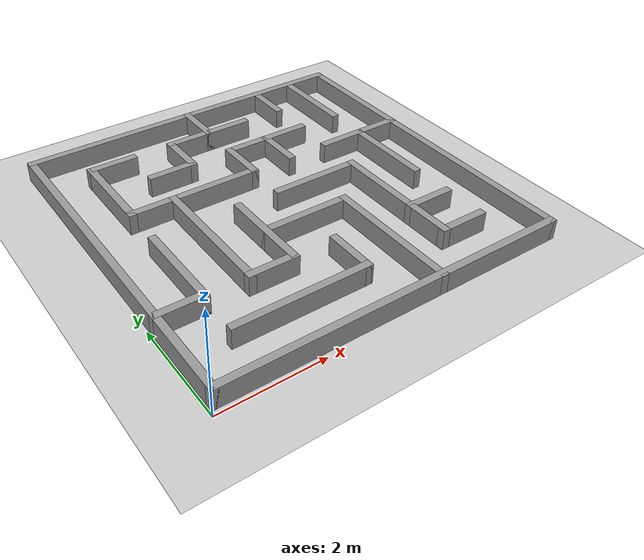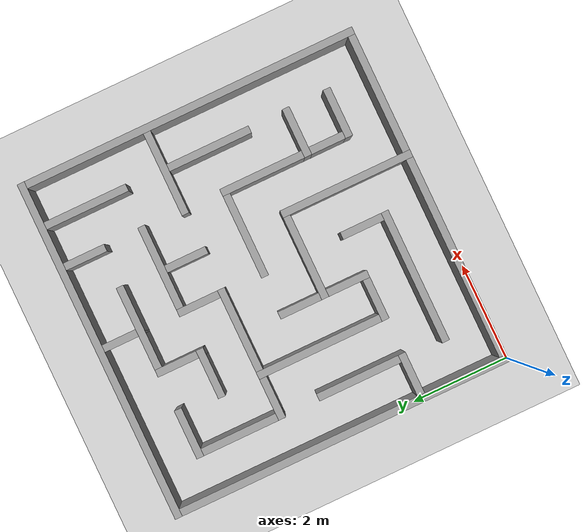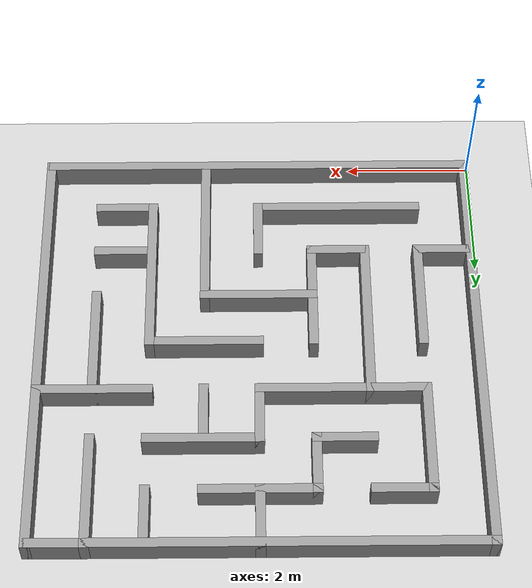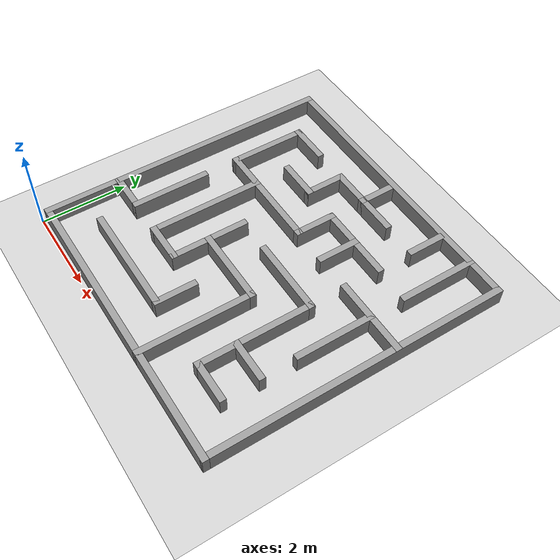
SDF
<sdf version="1.7">
 <world name="default">
  <scene><ambient>0.4 0.4 0.4 1</ambient><background>0.7 0.7 0.7 1</background><shadows>1</shadows></scene>
  <light name="sun" type="directional">
   <pose>0 0 10 0 -0 0</pose>
   <diffuse>0.8 0.8 0.8 1</diffuse>
   <specular>0.2 0.2 0.2 1</specular>
   <attenuation>
    <range>1000</range>
    <constant>0.9</constant>
    <linear>0.01</linear>
    <quadratic>0.001</quadratic>
   </attenuation>
   <direction>-0.5 0.1 -0.9</direction>
   <spot><inner_angle>0</inner_angle><outer_angle>0</outer_angle><falloff>0</falloff></spot>
  </light>
  <model name="ground_plane">
   <static>1</static>
   <link name="link">
    <collision name="collision">
     <geometry><plane><normal>0 0 1</normal><size>100 100</size></plane></geometry>
     <surface>
      <contact><collide_bitmask>65535</collide_bitmask></contact>
      <friction><ode><mu>100</mu><mu2>50</mu2></ode></friction>
     </surface>
    </collision>
    <visual name="visual">
     <cast_shadows>0</cast_shadows>
     <geometry><plane><normal>0 0 1</normal><size>100 100</size></plane></geometry>
     <material>
      <script><uri>file://media/materials/scripts/gazebo.material</uri><name>Gazebo/Grey</name></script>
     </material>
    </visual>
   </link>
  </model>
  <physics type="ode">
   <real_time_update_rate>1000</real_time_update_rate>
   <max_step_size>0.001</max_step_size>
   <real_time_factor>1</real_time_factor>
   <ode>
    <solver>
     <type>quick</type>
     <iters>150</iters>
     <precon_iters>0</precon_iters>
     <sor>1.4</sor>
     <use_dynamic_moi_rescaling>1</use_dynamic_moi_rescaling>
    </solver>
    <constraints>
     <cfm>1e-05</cfm>
     <erp>0.2</erp>
     <contact_max_correcting_vel>2000</contact_max_correcting_vel>
     <contact_surface_layer>0.01</contact_surface_layer>
    </constraints>
   </ode>
  </physics>
  <gravity>0 0 -9.8</gravity>
  <magnetic_field>6e-06 2.3e-05 -4.2e-05</magnetic_field>
  <atmosphere type="adiabatic"/>
  <spherical_coordinates>
   <surface_model>EARTH_WGS84</surface_model>
   <latitude_deg>0</latitude_deg>
   <longitude_deg>0</longitude_deg>
   <elevation>0</elevation>
   <heading_deg>0</heading_deg>
  </spherical_coordinates>
  <model name="Map_2">
   <pose>3.53443 3.58319 0 0 -0 0</pose>
   <link name="Wall_0">
    <collision name="Wall_0_Collision">
     <geometry><box><size>7 0.15 0.4</size></box></geometry>
     <pose>0 0 0.2 0 -0 0</pose>
    </collision>
    <visual name="Wall_0_Visual">
     <pose>0 0 0.2 0 -0 0</pose>
     <geometry><box><size>7 0.15 0.4</size></box></geometry>
     <material>
      <script><uri>file://media/materials/scripts/gazebo.material</uri><name>Gazebo/Grey</name></script>
      <ambient>1 1 1 1</ambient>
     </material>
     <meta><layer>0</layer></meta>
    </visual>
    <pose>0 3.425 0 0 -0 0</pose>
   </link>
   <link name="Wall_1">
    <collision name="Wall_1_Collision">
     <geometry><box><size>7 0.15 0.4</size></box></geometry>
     <pose>0 0 0.2 0 -0 0</pose>
    </collision>
    <visual name="Wall_1_Visual">
     <pose>0 0 0.2 0 -0 0</pose>
     <geometry><box><size>7 0.15 0.4</size></box></geometry>
     <material>
      <script><uri>file://media/materials/scripts/gazebo.material</uri><name>Gazebo/Grey</name></script>
      <ambient>1 1 1 1</ambient>
     </material>
     <meta><layer>0</layer></meta>
    </visual>
    <pose>3.425 0 0 0 -0 -1.5708</pose>
   </link>
   <link name="Wall_11">
    <collision name="Wall_11_Collision">
     <geometry><box><size>1.006 0.15 0.4</size></box></geometry>
     <pose>0 0 0.2 0 -0 0</pose>
    </collision>
    <visual name="Wall_11_Visual">
     <pose>0 0 0.2 0 -0 0</pose>
     <geometry><box><size>1.006 0.15 0.4</size></box></geometry>
     <material>
      <script><uri>file://media/materials/scripts/gazebo.material</uri><name>Gazebo/Grey</name></script>
      <ambient>1 1 1 1</ambient>
     </material>
     <meta><layer>0</layer></meta>
    </visual>
    <pose>2.14 -1.712 0 0 -0 3.14159</pose>
   </link>
   <link name="Wall_13">
    <collision name="Wall_13_Collision">
     <geometry><box><size>1.006 0.15 0.4</size></box></geometry>
     <pose>0 0 0.2 0 -0 0</pose>
    </collision>
    <visual name="Wall_13_Visual">
     <pose>0 0 0.2 0 -0 0</pose>
     <geometry><box><size>1.006 0.15 0.4</size></box></geometry>
     <material>
      <script><uri>file://media/materials/scripts/gazebo.material</uri><name>Gazebo/Grey</name></script>
      <ambient>1 1 1 1</ambient>
     </material>
     <meta><layer>0</layer></meta>
    </visual>
    <pose>2.14 -2.568 0 0 -0 3.14159</pose>
   </link>
   <link name="Wall_15">
    <collision name="Wall_15_Collision">
     <geometry><box><size>2.718 0.15 0.4</size></box></geometry>
     <pose>0 0 0.2 0 -0 0</pose>
    </collision>
    <visual name="Wall_15_Visual">
     <pose>0 0 0.2 0 -0 0</pose>
     <geometry><box><size>2.718 0.15 0.4</size></box></geometry>
     <material>
      <script><uri>file://media/materials/scripts/gazebo.material</uri><name>Gazebo/Grey</name></script>
      <ambient>1 1 1 1</ambient>
     </material>
     <meta><layer>0</layer></meta>
    </visual>
    <pose>1.712 -1.284 0 0 -0 1.5708</pose>
   </link>
   <link name="Wall_17">
    <collision name="Wall_17_Collision">
     <geometry><box><size>1.862 0.15 0.4</size></box></geometry>
     <pose>0 0 0.2 0 -0 0</pose>
    </collision>
    <visual name="Wall_17_Visual">
     <pose>0 0 0.2 0 -0 0</pose>
     <geometry><box><size>1.862 0.15 0.4</size></box></geometry>
     <material>
      <script><uri>file://media/materials/scripts/gazebo.material</uri><name>Gazebo/Grey</name></script>
      <ambient>1 1 1 1</ambient>
     </material>
     <meta><layer>0</layer></meta>
    </visual>
    <pose>0.856 0 0 0 -0 3.14159</pose>
   </link>
   <link name="Wall_19">
    <collision name="Wall_19_Collision">
     <geometry><box><size>2.719 0.15 0.4</size></box></geometry>
     <pose>0 0 0.2 0 -0 0</pose>
    </collision>
    <visual name="Wall_19_Visual">
     <pose>0 0 0.2 0 -0 0</pose>
     <geometry><box><size>2.719 0.15 0.4</size></box></geometry>
     <material>
      <script><uri>file://media/materials/scripts/gazebo.material</uri><name>Gazebo/Grey</name></script>
      <ambient>1 1 1 1</ambient>
     </material>
     <meta><layer>0</layer></meta>
    </visual>
    <pose>0.856 -2.1405 0 0 -0 1.5708</pose>
   </link>
   <link name="Wall_21">
    <collision name="Wall_21_Collision">
     <geometry><box><size>1.862 0.15 0.4</size></box></geometry>
     <pose>0 0 0.2 0 -0 0</pose>
    </collision>
    <visual name="Wall_21_Visual">
     <pose>0 0 0.2 0 -0 0</pose>
     <geometry><box><size>1.862 0.15 0.4</size></box></geometry>
     <material>
      <script><uri>file://media/materials/scripts/gazebo.material</uri><name>Gazebo/Grey</name></script>
      <ambient>1 1 1 1</ambient>
     </material>
     <meta><layer>0</layer></meta>
    </visual>
    <pose>0 -0.856 0 0 -0 3.14159</pose>
   </link>
   <link name="Wall_23">
    <collision name="Wall_23_Collision">
     <geometry><box><size>1.862 0.15 0.4</size></box></geometry>
     <pose>0 0 0.2 0 -0 0</pose>
    </collision>
    <visual name="Wall_23_Visual">
     <pose>0 0 0.2 0 -0 0</pose>
     <geometry><box><size>1.862 0.15 0.4</size></box></geometry>
     <material>
      <script><uri>file://media/materials/scripts/gazebo.material</uri><name>Gazebo/Grey</name></script>
      <ambient>1 1 1 1</ambient>
     </material>
     <meta><layer>0</layer></meta>
    </visual>
    <pose>-0.856 -0.856 0 0 -0 1.5708</pose>
   </link>
   <link name="Wall_25">
    <collision name="Wall_25_Collision">
     <geometry><box><size>1.006 0.15 0.4</size></box></geometry>
     <pose>0 0 0.2 0 -0 0</pose>
    </collision>
    <visual name="Wall_25_Visual">
     <pose>0 0 0.2 0 -0 0</pose>
     <geometry><box><size>1.006 0.15 0.4</size></box></geometry>
     <material>
      <script><uri>file://media/materials/scripts/gazebo.material</uri><name>Gazebo/Grey</name></script>
      <ambient>1 1 1 1</ambient>
     </material>
     <meta><layer>0</layer></meta>
    </visual>
    <pose>-1.284 -1.712 0 0 -0 3.14159</pose>
   </link>
   <link name="Wall_27">
    <collision name="Wall_27_Collision">
     <geometry><box><size>2.718 0.15 0.4</size></box></geometry>
     <pose>0 0 0.2 0 -0 0</pose>
    </collision>
    <visual name="Wall_27_Visual">
     <pose>0 0 0.2 0 -0 0</pose>
     <geometry><box><size>2.718 0.15 0.4</size></box></geometry>
     <material>
      <script><uri>file://media/materials/scripts/gazebo.material</uri><name>Gazebo/Grey</name></script>
      <ambient>1 1 1 1</ambient>
     </material>
     <meta><layer>0</layer></meta>
    </visual>
    <pose>-1.712 -0.428 0 0 -0 1.5708</pose>
   </link>
   <link name="Wall_29">
    <collision name="Wall_29_Collision">
     <geometry><box><size>2.7177 0.15 0.4</size></box></geometry>
     <pose>0 0 0.2 0 -0 0</pose>
    </collision>
    <visual name="Wall_29_Visual">
     <pose>0 0 0.2 0 -0 0</pose>
     <geometry><box><size>2.7177 0.15 0.4</size></box></geometry>
     <material>
      <script><uri>file://media/materials/scripts/gazebo.material</uri><name>Gazebo/Grey</name></script>
      <ambient>1 1 1 1</ambient>
     </material>
     <meta><layer>0</layer></meta>
    </visual>
    <pose>-1.284 0.856 0 0 -0 0</pose>
   </link>
   <link name="Wall_3">
    <collision name="Wall_3_Collision">
     <geometry><box><size>7 0.15 0.4</size></box></geometry>
     <pose>0 0 0.2 0 -0 0</pose>
    </collision>
    <visual name="Wall_3_Visual">
     <pose>0 0 0.2 0 -0 0</pose>
     <geometry><box><size>7 0.15 0.4</size></box></geometry>
     <material>
      <script><uri>file://media/materials/scripts/gazebo.material</uri><name>Gazebo/Grey</name></script>
      <ambient>1 1 1 1</ambient>
     </material>
     <meta><layer>0</layer></meta>
    </visual>
    <pose>-3.425 0 0 0 -0 1.5708</pose>
   </link>
   <link name="Wall_33">
    <collision name="Wall_33_Collision">
     <geometry><box><size>1.006 0.15 0.4</size></box></geometry>
     <pose>0 0 0.2 0 -0 0</pose>
    </collision>
    <visual name="Wall_33_Visual">
     <pose>0 0 0.2 0 -0 0</pose>
     <geometry><box><size>1.006 0.15 0.4</size></box></geometry>
     <material>
      <script><uri>file://media/materials/scripts/gazebo.material</uri><name>Gazebo/Grey</name></script>
      <ambient>1 1 1 1</ambient>
     </material>
     <meta><layer>0</layer></meta>
    </visual>
    <pose>-2.14 2.568 0 0 -0 0</pose>
   </link>
   <link name="Wall_35">
    <collision name="Wall_35_Collision">
     <geometry><box><size>1.006 0.15 0.4</size></box></geometry>
     <pose>0 0 0.2 0 -0 0</pose>
    </collision>
    <visual name="Wall_35_Visual">
     <pose>0 0 0.2 0 -0 0</pose>
     <geometry><box><size>1.006 0.15 0.4</size></box></geometry>
     <material>
      <script><uri>file://media/materials/scripts/gazebo.material</uri><name>Gazebo/Grey</name></script>
      <ambient>1 1 1 1</ambient>
     </material>
     <meta><layer>0</layer></meta>
    </visual>
    <pose>-1.284 1.712 0 0 -0 0</pose>
   </link>
   <link name="Wall_37">
    <collision name="Wall_37_Collision">
     <geometry><box><size>1.862 0.15 0.4</size></box></geometry>
     <pose>0 0 0.2 0 -0 0</pose>
    </collision>
    <visual name="Wall_37_Visual">
     <pose>0 0 0.2 0 -0 0</pose>
     <geometry><box><size>1.862 0.15 0.4</size></box></geometry>
     <material>
      <script><uri>file://media/materials/scripts/gazebo.material</uri><name>Gazebo/Grey</name></script>
      <ambient>1 1 1 1</ambient>
     </material>
     <meta><layer>0</layer></meta>
    </visual>
    <pose>-2.568 1.712 0 0 -0 -1.5708</pose>
   </link>
   <link name="Wall_39">
    <collision name="Wall_39_Collision">
     <geometry><box><size>1.006 0.15 0.4</size></box></geometry>
     <pose>0 0 0.2 0 -0 0</pose>
    </collision>
    <visual name="Wall_39_Visual">
     <pose>0 0 0.2 0 -0 0</pose>
     <geometry><box><size>1.006 0.15 0.4</size></box></geometry>
     <material>
      <script><uri>file://media/materials/scripts/gazebo.material</uri><name>Gazebo/Grey</name></script>
      <ambient>1 1 1 1</ambient>
     </material>
     <meta><layer>0</layer></meta>
    </visual>
    <pose>-0.856 2.14 0 0 -0 1.5708</pose>
   </link>
   <link name="Wall_41">
    <collision name="Wall_41_Collision">
     <geometry><box><size>1.862 0.15 0.4</size></box></geometry>
     <pose>0 0 0.2 0 -0 0</pose>
    </collision>
    <visual name="Wall_41_Visual">
     <pose>0 0 0.2 0 -0 0</pose>
     <geometry><box><size>1.862 0.15 0.4</size></box></geometry>
     <material>
      <script><uri>file://media/materials/scripts/gazebo.material</uri><name>Gazebo/Grey</name></script>
      <ambient>1 1 1 1</ambient>
     </material>
     <meta><layer>0</layer></meta>
    </visual>
    <pose>0 2.568 0 0 -0 0</pose>
   </link>
   <link name="Wall_43">
    <collision name="Wall_43_Collision">
     <geometry><box><size>1.007 0.15 0.4</size></box></geometry>
     <pose>0 0 0.2 0 -0 0</pose>
    </collision>
    <visual name="Wall_43_Visual">
     <pose>0 0 0.2 0 -0 0</pose>
     <geometry><box><size>1.007 0.15 0.4</size></box></geometry>
     <material>
      <script><uri>file://media/materials/scripts/gazebo.material</uri><name>Gazebo/Grey</name></script>
      <ambient>1 1 1 1</ambient>
     </material>
     <meta><layer>0</layer></meta>
    </visual>
    <pose>0 2.9965 0 0 -0 1.5708</pose>
   </link>
   <link name="Wall_45">
    <collision name="Wall_45_Collision">
     <geometry><box><size>1.006 0.15 0.4</size></box></geometry>
     <pose>0 0 0.2 0 -0 0</pose>
    </collision>
    <visual name="Wall_45_Visual">
     <pose>0 0 0.2 0 -0 0</pose>
     <geometry><box><size>1.006 0.15 0.4</size></box></geometry>
     <material>
      <script><uri>file://media/materials/scripts/gazebo.material</uri><name>Gazebo/Grey</name></script>
      <ambient>1 1 1 1</ambient>
     </material>
     <meta><layer>0</layer></meta>
    </visual>
    <pose>0 1.284 0 0 -0 1.5708</pose>
   </link>
   <link name="Wall_47">
    <collision name="Wall_47_Collision">
     <geometry><box><size>1.862 0.15 0.4</size></box></geometry>
     <pose>0 0 0.2 0 -0 0</pose>
    </collision>
    <visual name="Wall_47_Visual">
     <pose>0 0 0.2 0 -0 0</pose>
     <geometry><box><size>1.862 0.15 0.4</size></box></geometry>
     <material>
      <script><uri>file://media/materials/scripts/gazebo.material</uri><name>Gazebo/Grey</name></script>
      <ambient>1 1 1 1</ambient>
     </material>
     <meta><layer>0</layer></meta>
    </visual>
    <pose>0.856 1.712 0 0 -0 0</pose>
   </link>
   <link name="Wall_49">
    <collision name="Wall_49_Collision">
     <geometry><box><size>0.907 0.15 0.4</size></box></geometry>
     <pose>0 0 0.2 0 -0 0</pose>
    </collision>
    <visual name="Wall_49_Visual">
     <pose>0 0 0.2 0 -0 0</pose>
     <geometry><box><size>0.907 0.15 0.4</size></box></geometry>
     <material>
      <script><uri>file://media/materials/scripts/gazebo.material</uri><name>Gazebo/Grey</name></script>
      <ambient>1 1 1 1</ambient>
     </material>
     <meta><layer>0</layer></meta>
    </visual>
    <pose>1.712 2.9465 0 0 -0 -1.5708</pose>
   </link>
   <link name="Wall_5">
    <collision name="Wall_5_Collision">
     <geometry><box><size>7 0.15 0.4</size></box></geometry>
     <pose>0 0 0.2 0 -0 0</pose>
    </collision>
    <visual name="Wall_5_Visual">
     <pose>0 0 0.2 0 -0 0</pose>
     <geometry><box><size>7 0.15 0.4</size></box></geometry>
     <material>
      <script><uri>file://media/materials/scripts/gazebo.material</uri><name>Gazebo/Grey</name></script>
      <ambient>1 1 1 1</ambient>
     </material>
     <meta><layer>0</layer></meta>
    </visual>
    <pose>0 -3.425 0 0 -0 0</pose>
   </link>
   <link name="Wall_51">
    <collision name="Wall_51_Collision">
     <geometry><box><size>1.863 0.15 0.4</size></box></geometry>
     <pose>0 0 0.2 0 -0 0</pose>
    </collision>
    <visual name="Wall_51_Visual">
     <pose>0 0 0.2 0 -0 0</pose>
     <geometry><box><size>1.863 0.15 0.4</size></box></geometry>
     <material>
      <script><uri>file://media/materials/scripts/gazebo.material</uri><name>Gazebo/Grey</name></script>
      <ambient>1 1 1 1</ambient>
     </material>
     <meta><layer>0</layer></meta>
    </visual>
    <pose>2.568 2.5685 0 0 -0 -1.5708</pose>
   </link>
   <link name="Wall_53">
    <collision name="Wall_53_Collision">
     <geometry><box><size>1.006 0.15 0.4</size></box></geometry>
     <pose>0 0 0.2 0 -0 0</pose>
    </collision>
    <visual name="Wall_53_Visual">
     <pose>0 0 0.2 0 -0 0</pose>
     <geometry><box><size>1.006 0.15 0.4</size></box></geometry>
     <material>
      <script><uri>file://media/materials/scripts/gazebo.material</uri><name>Gazebo/Grey</name></script>
      <ambient>1 1 1 1</ambient>
     </material>
     <meta><layer>0</layer></meta>
    </visual>
    <pose>0.856 1.284 0 0 -0 -1.5708</pose>
   </link>
   <link name="Wall_55">
    <collision name="Wall_55_Collision">
     <geometry><box><size>1.007 0.15 0.4</size></box></geometry>
     <pose>0 0 0.2 0 -0 0</pose>
    </collision>
    <visual name="Wall_55_Visual">
     <pose>0 0 0.2 0 -0 0</pose>
     <geometry><box><size>1.007 0.15 0.4</size></box></geometry>
     <material>
      <script><uri>file://media/materials/scripts/gazebo.material</uri><name>Gazebo/Grey</name></script>
      <ambient>1 1 1 1</ambient>
     </material>
     <meta><layer>0</layer></meta>
    </visual>
    <pose>-2.9965 -1.712 0 0 -0 0</pose>
   </link>
   <link name="Wall_57">
    <collision name="Wall_57_Collision">
     <geometry><box><size>1.862 0.15 0.4</size></box></geometry>
     <pose>0 0 0.2 0 -0 0</pose>
    </collision>
    <visual name="Wall_57_Visual">
     <pose>0 0 0.2 0 -0 0</pose>
     <geometry><box><size>1.862 0.15 0.4</size></box></geometry>
     <material>
      <script><uri>file://media/materials/scripts/gazebo.material</uri><name>Gazebo/Grey</name></script>
      <ambient>1 1 1 1</ambient>
     </material>
     <meta><layer>0</layer></meta>
    </visual>
    <pose>-2.568 -0.856 0 0 -0 1.5708</pose>
   </link>
   <link name="Wall_59">
    <collision name="Wall_59_Collision">
     <geometry><box><size>2.718 0.15 0.4</size></box></geometry>
     <pose>0 0 0.2 0 -0 0</pose>
    </collision>
    <visual name="Wall_59_Visual">
     <pose>0 0 0.2 0 -0 0</pose>
     <geometry><box><size>2.718 0.15 0.4</size></box></geometry>
     <material>
      <script><uri>file://media/materials/scripts/gazebo.material</uri><name>Gazebo/Grey</name></script>
      <ambient>1 1 1 1</ambient>
     </material>
     <meta><layer>0</layer></meta>
    </visual>
    <pose>-1.284 -2.568 0 0 -0 0</pose>
   </link>
   <link name="Wall_61">
    <collision name="Wall_61_Collision">
     <geometry><box><size>1.006 0.15 0.4</size></box></geometry>
     <pose>0 0 0.2 0 -0 0</pose>
    </collision>
    <visual name="Wall_61_Visual">
     <pose>0 0 0.2 0 -0 0</pose>
     <geometry><box><size>1.006 0.15 0.4</size></box></geometry>
     <material>
      <script><uri>file://media/materials/scripts/gazebo.material</uri><name>Gazebo/Grey</name></script>
      <ambient>1 1 1 1</ambient>
     </material>
     <meta><layer>0</layer></meta>
    </visual>
    <pose>0 -2.14 0 0 -0 1.5708</pose>
   </link>
   <link name="Wall_7">
    <collision name="Wall_7_Collision">
     <geometry><box><size>1.863 0.15 0.4</size></box></geometry>
     <pose>0 0 0.2 0 -0 0</pose>
    </collision>
    <visual name="Wall_7_Visual">
     <pose>0 0 0.2 0 -0 0</pose>
     <geometry><box><size>1.863 0.15 0.4</size></box></geometry>
     <material>
      <script><uri>file://media/materials/scripts/gazebo.material</uri><name>Gazebo/Grey</name></script>
      <ambient>1 1 1 1</ambient>
     </material>
     <meta><layer>0</layer></meta>
    </visual>
    <pose>2.5685 0.856 0 0 -0 3.14159</pose>
   </link>
   <link name="Wall_9">
    <collision name="Wall_9_Collision">
     <geometry><box><size>1.862 0.15 0.4</size></box></geometry>
     <pose>0 0 0.2 0 -0 0</pose>
    </collision>
    <visual name="Wall_9_Visual">
     <pose>0 0 0.2 0 -0 0</pose>
     <geometry><box><size>1.862 0.15 0.4</size></box></geometry>
     <material>
      <script><uri>file://media/materials/scripts/gazebo.material</uri><name>Gazebo/Grey</name></script>
      <ambient>1 1 1 1</ambient>
     </material>
     <meta><layer>0</layer></meta>
    </visual>
    <pose>2.568 0 0 0 -0 -1.5708</pose>
   </link>
   <static>1</static>
  </model>
 </world>
</sdf>
